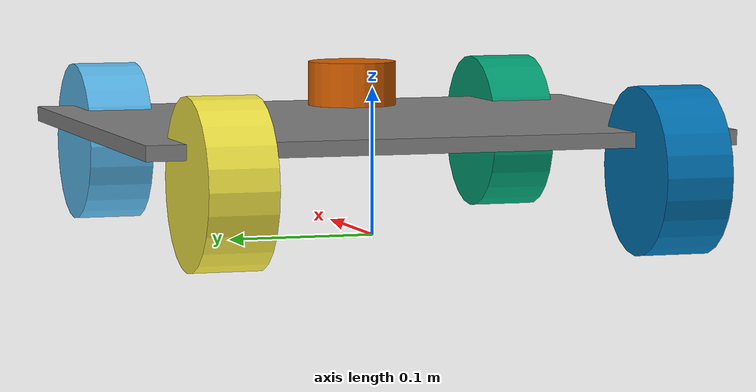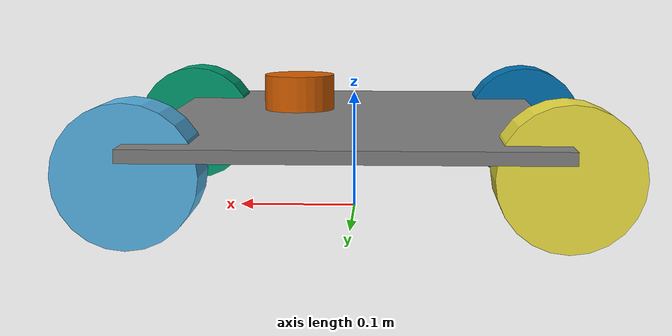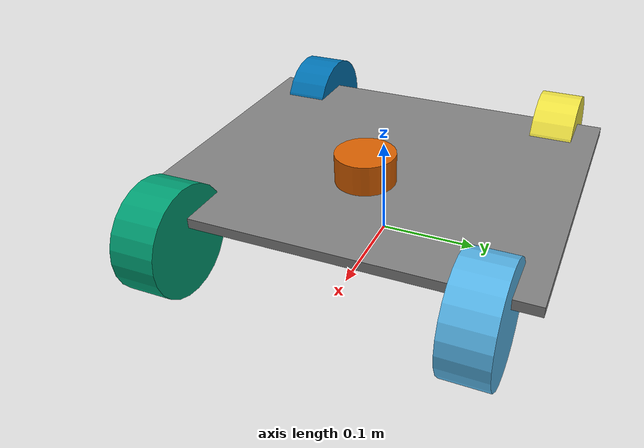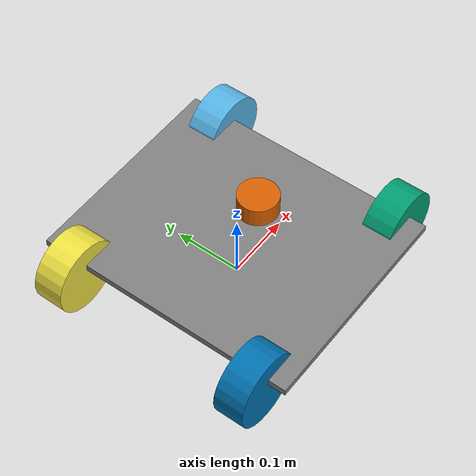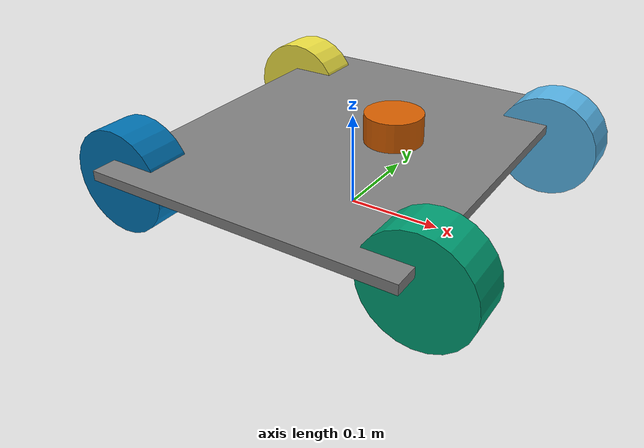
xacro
<?xml version="1.0"?>
<robot name="sputnik"
       xmlns:xacro="http://www.ros.org/wiki/xacro">

  <!-- ================= PROPERTIES ================= -->

  <xacro:property name="vehicle_name" value="sputnik"/>

  <xacro:property name="chassis_depth" value="0.01"/>
  <xacro:property name="wheelbase" value="0.324"/>
  <xacro:property name="half_width" value="0.196"/>
  <xacro:property name="half_track" value="0.148"/>
  <xacro:property name="chassis_mass" value="5"/>
  <xacro:property name="tire_radius" value="0.05475"/>
  <xacro:property name="chassis_height_offset" value="0.02"/>
  <xacro:property name="tire_inner_rad" value="0.056"/>
  <xacro:property name="tire_width" value="0.0445"/>
  <xacro:property name="tire_mass" value="0.15"/>

  <!-- ================= BASE LINK ================= -->

  <link name="base_link">

    <visual>
      <origin xyz="0 0 ${tire_radius + chassis_height_offset}" rpy="0 0 0"/>
      <geometry>
        <box size="${wheelbase} ${2*half_width} ${chassis_depth}"/>
      </geometry>
      <material name="gray">
        <color rgba="0.5 0.5 0.5 1.0"/>
      </material>
    </visual>

    <collision>
      <origin xyz="0 0 ${tire_radius + chassis_height_offset}" rpy="0 0 0"/>
      <geometry>
        <box size="${wheelbase} ${2*half_width} ${chassis_depth}"/>
      </geometry>
    </collision>

  </link>

  <!-- ================= WHEEL MACRO ================= -->

  <xacro:macro name="wheel" params="name x y">

    <link name="${name}_wheel_link">

      <visual>
        <origin xyz="0 0 0" rpy="1.570796 0 0"/>
        <geometry>
          <cylinder radius="${tire_radius}" length="${tire_width}"/>
        </geometry>
      </visual>

      <collision>
        <origin xyz="0 0 0" rpy="1.570796 0 0"/>
        <geometry>
          <cylinder radius="${tire_radius}" length="${tire_width}"/>
        </geometry>
      </collision>

    </link>

    <joint name="${name}_wheel_joint" type="continuous">
      <parent link="base_link"/>
      <child link="${name}_wheel_link"/>
      <origin xyz="${x} ${y} ${tire_radius}" rpy="0 0 0"/>
      <axis xyz="0 1 0"/>
    </joint>

  </xacro:macro>

  <!-- ================= WHEELS ================= -->

  <xacro:wheel
    name="front_left"
    x="${wheelbase/2}"
    y="${half_track}"/>

  <xacro:wheel
    name="front_right"
    x="${wheelbase/2}"
    y="-${half_track}"/>

  <xacro:wheel
    name="rear_left"
    x="-${wheelbase/2}"
    y="${half_track}"/>

  <xacro:wheel
    name="rear_right"
    x="-${wheelbase/2}"
    y="-${half_track}"/>

  <!-- ================= LASER ================= -->

  <link name="laser_link">
    <visual>
      <geometry>
        <cylinder radius="0.03" length="0.03"/>
      </geometry>
    </visual>
  </link>

  <joint name="laser_joint" type="fixed">
    <parent link="base_link"/>
    <child link="laser_link"/>
    <origin xyz="0.0476 0 0.1" rpy="0 0 0"/>
  </joint>

  <!-- ================= IMU ================= -->

  <link name="imu_link"/>

  <joint name="imu_joint" type="fixed">
    <parent link="base_link"/>
    <child link="imu_link"/>
    <origin xyz="0.11 0 0" rpy="3.14159 0 0"/>
  </joint>

</robot>
